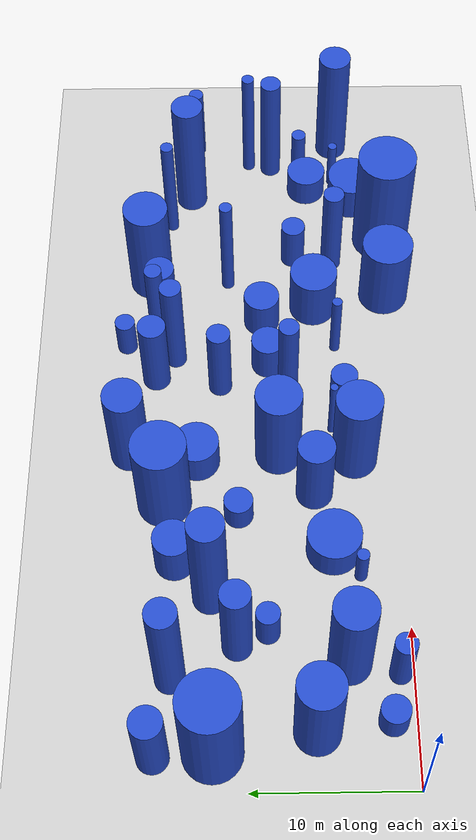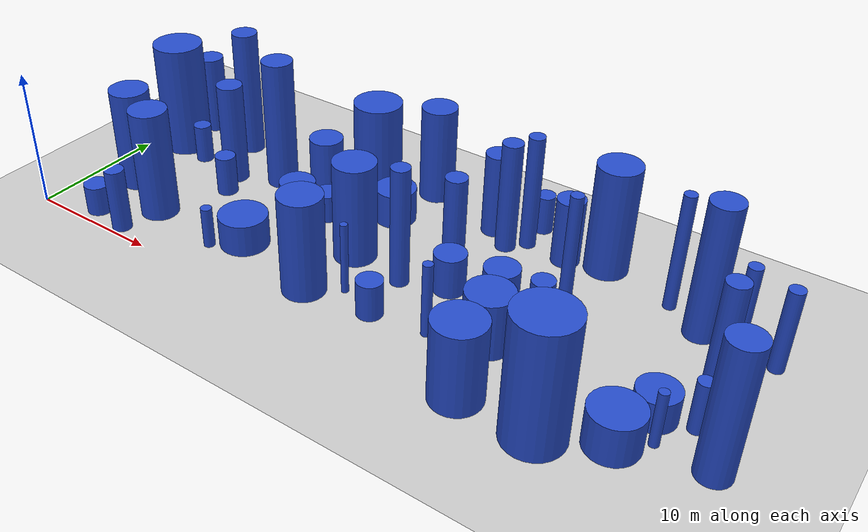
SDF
<sdf version="1.6">
 <world name="default">
  <model name="ground_plane">
   <static>1</static>
   <link name="link">
    <collision name="collision">
     <geometry><plane><normal>0 0 1</normal><size>100 100</size></plane></geometry>
     <surface><friction><ode><mu>100</mu><mu2>50</mu2></ode></friction></surface>
    </collision>
    <visual name="visual">
     <cast_shadows>0</cast_shadows>
     <geometry><plane><normal>0 0 1</normal><size>100 100</size></plane></geometry>
     <material>
      <script><uri>file://media/materials/scripts/gazebo.material</uri><name>Gazebo/Grey</name></script>
     </material>
    </visual>
   </link>
  </model>
  <model name="Cylinder 0">
   <static>1</static>
   <link name="link">
    <inertial>
     <mass>0.00859</mass>
     <inertia><ixx>0.00922</ixx><ixy>0</ixy><ixz>0</ixz><iyy>0.00922</iyy><iyz>0</iyz><izz>0.00922</izz></inertia>
    </inertial>
    <collision name="collision">
     <geometry><cylinder><length>2.52868</length><radius>1.47051</radius></cylinder></geometry>
     <surface><contact><collide_without_contact>1</collide_without_contact></contact></surface>
    </collision>
    <visual name="visual">
     <geometry><cylinder><length>2.52868</length><radius>1.47051</radius></cylinder></geometry>
     <material>
      <script><uri>file://media/materials/scripts/gazebo.material</uri><name>Gazebo/Blue</name></script>
     </material>
    </visual>
    <gravity>0</gravity>
   </link>
   <pose>21.84558 13.20677 1.26434 0 0 0</pose>
  </model>
  <model name="Cylinder 6">
   <static>1</static>
   <link name="link">
    <inertial>
     <mass>0.00950</mass>
     <inertia><ixx>0.03203</ixx><ixy>0</ixy><ixz>0</ixz><iyy>0.03203</iyy><iyz>0</iyz><izz>0.03203</izz></inertia>
    </inertial>
    <collision name="collision">
     <geometry><cylinder><length>6.12429</length><radius>0.99359</radius></cylinder></geometry>
     <surface><contact><collide_without_contact>1</collide_without_contact></contact></surface>
    </collision>
    <visual name="visual">
     <geometry><cylinder><length>6.12429</length><radius>0.99359</radius></cylinder></geometry>
     <material>
      <script><uri>file://media/materials/scripts/gazebo.material</uri><name>Gazebo/Blue</name></script>
     </material>
    </visual>
    <gravity>0</gravity>
   </link>
   <pose>2.14470 15.52811 3.06214 0 0 0</pose>
  </model>
  <model name="Cylinder 10">
   <static>1</static>
   <link name="link">
    <inertial>
     <mass>0.01603</mass>
     <inertia><ixx>0.03169</ixx><ixy>0</ixy><ixz>0</ixz><iyy>0.03169</iyy><iyz>0</iyz><izz>0.03169</izz></inertia>
    </inertial>
    <collision name="collision">
     <geometry><cylinder><length>4.01059</length><radius>1.59519</radius></cylinder></geometry>
     <surface><contact><collide_without_contact>1</collide_without_contact></contact></surface>
    </collision>
    <visual name="visual">
     <geometry><cylinder><length>4.01059</length><radius>1.59519</radius></cylinder></geometry>
     <material>
      <script><uri>file://media/materials/scripts/gazebo.material</uri><name>Gazebo/Blue</name></script>
     </material>
    </visual>
    <gravity>0</gravity>
   </link>
   <pose>34.21199 5.33464 2.00530 0 0 0</pose>
  </model>
  <model name="Cylinder 13">
   <static>1</static>
   <link name="link">
    <inertial>
     <mass>0.02797</mass>
     <inertia><ixx>0.16425</ixx><ixy>0</ixy><ixz>0</ixz><iyy>0.16425</iyy><iyz>0</iyz><izz>0.16425</izz></inertia>
    </inertial>
    <collision name="collision">
     <geometry><cylinder><length>7.98618</length><radius>1.49322</radius></cylinder></geometry>
     <surface><contact><collide_without_contact>1</collide_without_contact></contact></surface>
    </collision>
    <visual name="visual">
     <geometry><cylinder><length>7.98618</length><radius>1.49322</radius></cylinder></geometry>
     <material>
      <script><uri>file://media/materials/scripts/gazebo.material</uri><name>Gazebo/Blue</name></script>
     </material>
    </visual>
    <gravity>0</gravity>
   </link>
   <pose>36.56761 16.57723 3.99309 0 0 0</pose>
  </model>
  <model name="Cylinder 14">
   <static>1</static>
   <link name="link">
    <inertial>
     <mass>0.02478</mass>
     <inertia><ixx>0.13306</ixx><ixy>0</ixy><ixz>0</ixz><iyy>0.13306</iyy><iyz>0</iyz><izz>0.13306</izz></inertia>
    </inertial>
    <collision name="collision">
     <geometry><cylinder><length>7.63181</length><radius>1.43765</radius></cylinder></geometry>
     <surface><contact><collide_without_contact>1</collide_without_contact></contact></surface>
    </collision>
    <visual name="visual">
     <geometry><cylinder><length>7.63181</length><radius>1.43765</radius></cylinder></geometry>
     <material>
      <script><uri>file://media/materials/scripts/gazebo.material</uri><name>Gazebo/Blue</name></script>
     </material>
    </visual>
    <gravity>0</gravity>
   </link>
   <pose>3.54285 5.92787 3.81591 0 0 0</pose>
  </model>
  <model name="Cylinder 25">
   <static>1</static>
   <link name="link">
    <inertial>
     <mass>0.00869</mass>
     <inertia><ixx>0.01215</ixx><ixy>0</ixy><ixz>0</ixz><iyy>0.01215</iyy><iyz>0</iyz><izz>0.01215</izz></inertia>
    </inertial>
    <collision name="collision">
     <geometry><cylinder><length>3.46196</length><radius>1.26390</radius></cylinder></geometry>
     <surface><contact><collide_without_contact>1</collide_without_contact></contact></surface>
    </collision>
    <visual name="visual">
     <geometry><cylinder><length>3.46196</length><radius>1.26390</radius></cylinder></geometry>
     <material>
      <script><uri>file://media/materials/scripts/gazebo.material</uri><name>Gazebo/Blue</name></script>
     </material>
    </visual>
    <gravity>0</gravity>
   </link>
   <pose>14.58376 14.51484 1.73098 0 0 0</pose>
  </model>
  <model name="Cylinder 26">
   <static>1</static>
   <link name="link">
    <inertial>
     <mass>0.00419</mass>
     <inertia><ixx>0.02532</ixx><ixy>0</ixy><ixz>0</ixz><iyy>0.02532</iyy><iyz>0</iyz><izz>0.02532</izz></inertia>
    </inertial>
    <collision name="collision">
     <geometry><cylinder><length>8.45832</length><radius>0.56165</radius></cylinder></geometry>
     <surface><contact><collide_without_contact>1</collide_without_contact></contact></surface>
    </collision>
    <visual name="visual">
     <geometry><cylinder><length>8.45832</length><radius>0.56165</radius></cylinder></geometry>
     <material>
      <script><uri>file://media/materials/scripts/gazebo.material</uri><name>Gazebo/Blue</name></script>
     </material>
    </visual>
    <gravity>0</gravity>
   </link>
   <pose>31.03256 15.87372 4.22916 0 0 0</pose>
  </model>
  <model name="Cylinder 29">
   <static>1</static>
   <link name="link">
    <inertial>
     <mass>0.01311</mass>
     <inertia><ixx>0.04273</ixx><ixy>0</ixy><ixz>0</ixz><iyy>0.04273</iyy><iyz>0</iyz><izz>0.04273</izz></inertia>
    </inertial>
    <collision name="collision">
     <geometry><cylinder><length>5.90664</length><radius>1.18849</radius></cylinder></geometry>
     <surface><contact><collide_without_contact>1</collide_without_contact></contact></surface>
    </collision>
    <visual name="visual">
     <geometry><cylinder><length>5.90664</length><radius>1.18849</radius></cylinder></geometry>
     <material>
      <script><uri>file://media/materials/scripts/gazebo.material</uri><name>Gazebo/Blue</name></script>
     </material>
    </visual>
    <gravity>0</gravity>
   </link>
   <pose>19.39570 5.64225 2.95332 0 0 0</pose>
  </model>
  <model name="Cylinder 35">
   <static>1</static>
   <link name="link">
    <inertial>
     <mass>0.03540</mass>
     <inertia><ixx>0.18807</ixx><ixy>0</ixy><ixz>0</ixz><iyy>0.18807</iyy><iyz>0</iyz><izz>0.18807</izz></inertia>
    </inertial>
    <collision name="collision">
     <geometry><cylinder><length>7.38876</length><radius>1.74653</radius></cylinder></geometry>
     <surface><contact><collide_without_contact>1</collide_without_contact></contact></surface>
    </collision>
    <visual name="visual">
     <geometry><cylinder><length>7.38876</length><radius>1.74653</radius></cylinder></geometry>
     <material>
      <script><uri>file://media/materials/scripts/gazebo.material</uri><name>Gazebo/Blue</name></script>
     </material>
    </visual>
    <gravity>0</gravity>
   </link>
   <pose>18.78845 15.25643 3.69438 0 0 0</pose>
  </model>
  <model name="Cylinder 36">
   <static>1</static>
   <link name="link">
    <inertial>
     <mass>0.00096</mass>
     <inertia><ixx>0.00226</ixx><ixy>0</ixy><ixz>0</ixz><iyy>0.00226</iyy><iyz>0</iyz><izz>0.00226</izz></inertia>
    </inertial>
    <collision name="collision">
     <geometry><cylinder><length>5.29544</length><radius>0.33900</radius></cylinder></geometry>
     <surface><contact><collide_without_contact>1</collide_without_contact></contact></surface>
    </collision>
    <visual name="visual">
     <geometry><cylinder><length>5.29544</length><radius>0.33900</radius></cylinder></geometry>
     <material>
      <script><uri>file://media/materials/scripts/gazebo.material</uri><name>Gazebo/Blue</name></script>
     </material>
    </visual>
    <gravity>0</gravity>
   </link>
   <pose>30.75622 3.91366 2.64772 0 0 0</pose>
  </model>
  <model name="Cylinder 40">
   <static>1</static>
   <link name="link">
    <inertial>
     <mass>0.00282</mass>
     <inertia><ixx>0.00160</ixx><ixy>0</ixy><ixz>0</ixz><iyy>0.00160</iyy><iyz>0</iyz><izz>0.00160</izz></inertia>
    </inertial>
    <collision name="collision">
     <geometry><cylinder><length>2.04846</length><radius>0.93604</radius></cylinder></geometry>
     <surface><contact><collide_without_contact>1</collide_without_contact></contact></surface>
    </collision>
    <visual name="visual">
     <geometry><cylinder><length>2.04846</length><radius>0.93604</radius></cylinder></geometry>
     <material>
      <script><uri>file://media/materials/scripts/gazebo.material</uri><name>Gazebo/Blue</name></script>
     </material>
    </visual>
    <gravity>0</gravity>
   </link>
   <pose>17.85015 10.50843 1.02423 0 0 0</pose>
  </model>
  <model name="Cylinder 41">
   <static>1</static>
   <link name="link">
    <inertial>
     <mass>0.01875</mass>
     <inertia><ixx>0.08849</ixx><ixy>0</ixy><ixz>0</ixz><iyy>0.08849</iyy><iyz>0</iyz><izz>0.08849</izz></inertia>
    </inertial>
    <collision name="collision">
     <geometry><cylinder><length>7.18613</length><radius>1.28896</radius></cylinder></geometry>
     <surface><contact><collide_without_contact>1</collide_without_contact></contact></surface>
    </collision>
    <visual name="visual">
     <geometry><cylinder><length>7.18613</length><radius>1.28896</radius></cylinder></geometry>
     <material>
      <script><uri>file://media/materials/scripts/gazebo.material</uri><name>Gazebo/Blue</name></script>
     </material>
    </visual>
    <gravity>0</gravity>
   </link>
   <pose>22.45891 17.58075 3.59307 0 0 0</pose>
  </model>
  <model name="Cylinder 43">
   <static>1</static>
   <link name="link">
    <inertial>
     <mass>0.00548</mass>
     <inertia><ixx>0.00542</ixx><ixy>0</ixy><ixz>0</ixz><iyy>0.00542</iyy><iyz>0</iyz><izz>0.00542</izz></inertia>
    </inertial>
    <collision name="collision">
     <geometry><cylinder><length>2.86765</length><radius>1.10262</radius></cylinder></geometry>
     <surface><contact><collide_without_contact>1</collide_without_contact></contact></surface>
    </collision>
    <visual name="visual">
     <geometry><cylinder><length>2.86765</length><radius>1.10262</radius></cylinder></geometry>
     <material>
      <script><uri>file://media/materials/scripts/gazebo.material</uri><name>Gazebo/Blue</name></script>
     </material>
    </visual>
    <gravity>0</gravity>
   </link>
   <pose>29.43216 8.50548 1.43382 0 0 0</pose>
  </model>
  <model name="Cylinder 44">
   <static>1</static>
   <link name="link">
    <inertial>
     <mass>0.02401</mass>
     <inertia><ixx>0.14614</ixx><ixy>0</ixy><ixz>0</ixz><iyy>0.14614</iyy><iyz>0</iyz><izz>0.14614</izz></inertia>
    </inertial>
    <collision name="collision">
     <geometry><cylinder><length>8.21422</length><radius>1.36398</radius></cylinder></geometry>
     <surface><contact><collide_without_contact>1</collide_without_contact></contact></surface>
    </collision>
    <visual name="visual">
     <geometry><cylinder><length>8.21422</length><radius>1.36398</radius></cylinder></geometry>
     <material>
      <script><uri>file://media/materials/scripts/gazebo.material</uri><name>Gazebo/Blue</name></script>
     </material>
    </visual>
    <gravity>0</gravity>
   </link>
   <pose>7.74931 3.88722 4.10711 0 0 0</pose>
  </model>
  <model name="Cylinder 50">
   <static>1</static>
   <link name="link">
    <inertial>
     <mass>0.00285</mass>
     <inertia><ixx>0.00173</ixx><ixy>0</ixy><ixz>0</ixz><iyy>0.00173</iyy><iyz>0</iyz><izz>0.00173</izz></inertia>
    </inertial>
    <collision name="collision">
     <geometry><cylinder><length>2.19328</length><radius>0.90892</radius></cylinder></geometry>
     <surface><contact><collide_without_contact>1</collide_without_contact></contact></surface>
    </collision>
    <visual name="visual">
     <geometry><cylinder><length>2.19328</length><radius>0.90892</radius></cylinder></geometry>
     <material>
      <script><uri>file://media/materials/scripts/gazebo.material</uri><name>Gazebo/Blue</name></script>
     </material>
    </visual>
    <gravity>0</gravity>
   </link>
   <pose>4.13088 1.44789 1.09664 0 0 0</pose>
  </model>
  <model name="Cylinder 51">
   <static>1</static>
   <link name="link">
    <inertial>
     <mass>0.00074</mass>
     <inertia><ixx>0.00058</ixx><ixy>0</ixy><ixz>0</ixz><iyy>0.00058</iyy><iyz>0</iyz><izz>0.00058</izz></inertia>
    </inertial>
    <collision name="collision">
     <geometry><cylinder><length>2.99114</length><radius>0.39693</radius></cylinder></geometry>
     <surface><contact><collide_without_contact>1</collide_without_contact></contact></surface>
    </collision>
    <visual name="visual">
     <geometry><cylinder><length>2.99114</length><radius>0.39693</radius></cylinder></geometry>
     <material>
      <script><uri>file://media/materials/scripts/gazebo.material</uri><name>Gazebo/Blue</name></script>
     </material>
    </visual>
    <gravity>0</gravity>
   </link>
   <pose>13.54326 2.91767 1.49557 0 0 0</pose>
  </model>
  <model name="Cylinder 53">
   <static>1</static>
   <link name="link">
    <inertial>
     <mass>0.04631</mass>
     <inertia><ixx>0.32648</ixx><ixy>0</ixy><ixz>0</ixz><iyy>0.32648</iyy><iyz>0</iyz><izz>0.32648</izz></inertia>
    </inertial>
    <collision name="collision">
     <geometry><cylinder><length>8.62246</length><radius>1.84905</radius></cylinder></geometry>
     <surface><contact><collide_without_contact>1</collide_without_contact></contact></surface>
    </collision>
    <visual name="visual">
     <geometry><cylinder><length>8.62246</length><radius>1.84905</radius></cylinder></geometry>
     <material>
      <script><uri>file://media/materials/scripts/gazebo.material</uri><name>Gazebo/Blue</name></script>
     </material>
    </visual>
    <gravity>0</gravity>
   </link>
   <pose>2.38717 12.05559 4.31123 0 0 0</pose>
  </model>
  <model name="Cylinder 56">
   <static>1</static>
   <link name="link">
    <inertial>
     <mass>0.01410</mass>
     <inertia><ixx>0.11528</ixx><ixy>0</ixy><ixz>0</ixz><iyy>0.11528</iyy><iyz>0</iyz><izz>0.11528</izz></inertia>
    </inertial>
    <collision name="collision">
     <geometry><cylinder><length>9.76389</length><radius>0.95891</radius></cylinder></geometry>
     <surface><contact><collide_without_contact>1</collide_without_contact></contact></surface>
    </collision>
    <visual name="visual">
     <geometry><cylinder><length>9.76389</length><radius>0.95891</radius></cylinder></geometry>
     <material>
      <script><uri>file://media/materials/scripts/gazebo.material</uri><name>Gazebo/Blue</name></script>
     </material>
    </visual>
    <gravity>0</gravity>
   </link>
   <pose>6.91581 14.62307 4.88194 0 0 0</pose>
  </model>
  <model name="Cylinder 57">
   <static>1</static>
   <link name="link">
    <inertial>
     <mass>0.00243</mass>
     <inertia><ixx>0.01442</ixx><ixy>0</ixy><ixz>0</ixz><iyy>0.01442</iyy><iyz>0</iyz><izz>0.01442</izz></inertia>
    </inertial>
    <collision name="collision">
     <geometry><cylinder><length>8.40246</length><radius>0.42927</radius></cylinder></geometry>
     <surface><contact><collide_without_contact>1</collide_without_contact></contact></surface>
    </collision>
    <visual name="visual">
     <geometry><cylinder><length>8.40246</length><radius>0.42927</radius></cylinder></geometry>
     <material>
      <script><uri>file://media/materials/scripts/gazebo.material</uri><name>Gazebo/Blue</name></script>
     </material>
    </visual>
    <gravity>0</gravity>
   </link>
   <pose>41.60891 15.24955 4.20123 0 0 0</pose>
  </model>
  <model name="Cylinder 64">
   <static>1</static>
   <link name="link">
    <inertial>
     <mass>0.00237</mass>
     <inertia><ixx>0.00693</ixx><ixy>0</ixy><ixz>0</ixz><iyy>0.00693</iyy><iyz>0</iyz><izz>0.00693</izz></inertia>
    </inertial>
    <collision name="collision">
     <geometry><cylinder><length>5.85245</length><radius>0.50806</radius></cylinder></geometry>
     <surface><contact><collide_without_contact>1</collide_without_contact></contact></surface>
    </collision>
    <visual name="visual">
     <geometry><cylinder><length>5.85245</length><radius>0.50806</radius></cylinder></geometry>
     <material>
      <script><uri>file://media/materials/scripts/gazebo.material</uri><name>Gazebo/Blue</name></script>
     </material>
    </visual>
    <gravity>0</gravity>
   </link>
   <pose>48.98551 13.45441 2.92622 0 0 0</pose>
  </model>
  <model name="Cylinder 67">
   <static>1</static>
   <link name="link">
    <inertial>
     <mass>0.00745</mass>
     <inertia><ixx>0.01662</ixx><ixy>0</ixy><ixz>0</ixz><iyy>0.01662</iyy><iyz>0</iyz><izz>0.01662</izz></inertia>
    </inertial>
    <collision name="collision">
     <geometry><cylinder><length>4.88348</length><radius>0.98555</radius></cylinder></geometry>
     <surface><contact><collide_without_contact>1</collide_without_contact></contact></surface>
    </collision>
    <visual name="visual">
     <geometry><cylinder><length>4.88348</length><radius>0.98555</radius></cylinder></geometry>
     <material>
      <script><uri>file://media/materials/scripts/gazebo.material</uri><name>Gazebo/Blue</name></script>
     </material>
    </visual>
    <gravity>0</gravity>
   </link>
   <pose>33.97305 15.75198 2.44174 0 0 0</pose>
  </model>
  <model name="Cylinder 70">
   <static>1</static>
   <link name="link">
    <inertial>
     <mass>0.05315</mass>
     <inertia><ixx>0.38630</ixx><ixy>0</ixy><ixz>0</ixz><iyy>0.38630</iyy><iyz>0</iyz><izz>0.38630</izz></inertia>
    </inertial>
    <collision name="collision">
     <geometry><cylinder><length>8.69149</length><radius>1.97304</radius></cylinder></geometry>
     <surface><contact><collide_without_contact>1</collide_without_contact></contact></surface>
    </collision>
    <visual name="visual">
     <geometry><cylinder><length>8.69149</length><radius>1.97304</radius></cylinder></geometry>
     <material>
      <script><uri>file://media/materials/scripts/gazebo.material</uri><name>Gazebo/Blue</name></script>
     </material>
    </visual>
    <gravity>0</gravity>
   </link>
   <pose>40.21470 0.28979 4.34574 0 0 0</pose>
  </model>
  <model name="Cylinder 74">
   <static>1</static>
   <link name="link">
    <inertial>
     <mass>0.00370</mass>
     <inertia><ixx>0.00452</ixx><ixy>0</ixy><ixz>0</ixz><iyy>0.00452</iyy><iyz>0</iyz><izz>0.00452</izz></inertia>
    </inertial>
    <collision name="collision">
     <geometry><cylinder><length>3.55855</length><radius>0.81366</radius></cylinder></geometry>
     <surface><contact><collide_without_contact>1</collide_without_contact></contact></surface>
    </collision>
    <visual name="visual">
     <geometry><cylinder><length>3.55855</length><radius>0.81366</radius></cylinder></geometry>
     <material>
      <script><uri>file://media/materials/scripts/gazebo.material</uri><name>Gazebo/Blue</name></script>
     </material>
    </visual>
    <gravity>0</gravity>
   </link>
   <pose>38.56090 6.62677 1.77927 0 0 0</pose>
  </model>
  <model name="Cylinder 75">
   <static>1</static>
   <link name="link">
    <inertial>
     <mass>0.00578</mass>
     <inertia><ixx>0.01941</ixx><ixy>0</ixy><ixz>0</ixz><iyy>0.01941</iyy><iyz>0</iyz><izz>0.01941</izz></inertia>
    </inertial>
    <collision name="collision">
     <geometry><cylinder><length>6.20812</length><radius>0.76977</radius></cylinder></geometry>
     <surface><contact><collide_without_contact>1</collide_without_contact></contact></surface>
    </collision>
    <visual name="visual">
     <geometry><cylinder><length>6.20812</length><radius>0.76977</radius></cylinder></geometry>
     <material>
      <script><uri>file://media/materials/scripts/gazebo.material</uri><name>Gazebo/Blue</name></script>
     </material>
    </visual>
    <gravity>0</gravity>
   </link>
   <pose>27.66321 11.72273 3.10406 0 0 0</pose>
  </model>
  <model name="Cylinder 83">
   <static>1</static>
   <link name="link">
    <inertial>
     <mass>0.00829</mass>
     <inertia><ixx>0.02826</ixx><ixy>0</ixy><ixz>0</ixz><iyy>0.02826</iyy><iyz>0</iyz><izz>0.02826</izz></inertia>
    </inertial>
    <collision name="collision">
     <geometry><cylinder><length>6.19191</length><radius>0.92339</radius></cylinder></geometry>
     <surface><contact><collide_without_contact>1</collide_without_contact></contact></surface>
    </collision>
    <visual name="visual">
     <geometry><cylinder><length>6.19191</length><radius>0.92339</radius></cylinder></geometry>
     <material>
      <script><uri>file://media/materials/scripts/gazebo.material</uri><name>Gazebo/Blue</name></script>
     </material>
    </visual>
    <gravity>0</gravity>
   </link>
   <pose>28.29855 16.02337 3.09596 0 0 0</pose>
  </model>
  <model name="Cylinder 84">
   <static>1</static>
   <link name="link">
    <inertial>
     <mass>0.00362</mass>
     <inertia><ixx>0.00713</ixx><ixy>0</ixy><ixz>0</ixz><iyy>0.00713</iyy><iyz>0</iyz><izz>0.00713</izz></inertia>
    </inertial>
    <collision name="collision">
     <geometry><cylinder><length>4.70653</length><radius>0.70010</radius></cylinder></geometry>
     <surface><contact><collide_without_contact>1</collide_without_contact></contact></surface>
    </collision>
    <visual name="visual">
     <geometry><cylinder><length>4.70653</length><radius>0.70010</radius></cylinder></geometry>
     <material>
      <script><uri>file://media/materials/scripts/gazebo.material</uri><name>Gazebo/Blue</name></script>
     </material>
    </visual>
    <gravity>0</gravity>
   </link>
   <pose>7.09654 0.85164 2.35326 0 0 0</pose>
  </model>
  <model name="Cylinder 85">
   <static>1</static>
   <link name="link">
    <inertial>
     <mass>0.01216</mass>
     <inertia><ixx>0.01612</ixx><ixy>0</ixy><ixz>0</ixz><iyy>0.01612</iyy><iyz>0</iyz><izz>0.01612</izz></inertia>
    </inertial>
    <collision name="collision">
     <geometry><cylinder><length>2.70342</length><radius>1.69253</radius></cylinder></geometry>
     <surface><contact><collide_without_contact>1</collide_without_contact></contact></surface>
    </collision>
    <visual name="visual">
     <geometry><cylinder><length>2.70342</length><radius>1.69253</radius></cylinder></geometry>
     <material>
      <script><uri>file://media/materials/scripts/gazebo.material</uri><name>Gazebo/Blue</name></script>
     </material>
    </visual>
    <gravity>0</gravity>
   </link>
   <pose>43.91452 2.25195 1.35171 0 0 0</pose>
  </model>
  <model name="Cylinder 86">
   <static>1</static>
   <link name="link">
    <inertial>
     <mass>0.02549</mass>
     <inertia><ixx>0.12559</ixx><ixy>0</ixy><ixz>0</ixz><iyy>0.12559</iyy><iyz>0</iyz><izz>0.12559</izz></inertia>
    </inertial>
    <collision name="collision">
     <geometry><cylinder><length>7.23835</length><radius>1.49735</radius></cylinder></geometry>
     <surface><contact><collide_without_contact>1</collide_without_contact></contact></surface>
    </collision>
    <visual name="visual">
     <geometry><cylinder><length>7.23835</length><radius>1.49735</radius></cylinder></geometry>
     <material>
      <script><uri>file://media/materials/scripts/gazebo.material</uri><name>Gazebo/Blue</name></script>
     </material>
    </visual>
    <gravity>0</gravity>
   </link>
   <pose>21.90961 2.96513 3.61917 0 0 0</pose>
  </model>
  <model name="Cylinder 87">
   <static>1</static>
   <link name="link">
    <inertial>
     <mass>0.01075</mass>
     <inertia><ixx>0.05514</ixx><ixy>0</ixy><ixz>0</ixz><iyy>0.05514</iyy><iyz>0</iyz><izz>0.05514</izz></inertia>
    </inertial>
    <collision name="collision">
     <geometry><cylinder><length>7.67533</length><radius>0.94406</radius></cylinder></geometry>
     <surface><contact><collide_without_contact>1</collide_without_contact></contact></surface>
    </collision>
    <visual name="visual">
     <geometry><cylinder><length>7.67533</length><radius>0.94406</radius></cylinder></geometry>
     <material>
      <script><uri>file://media/materials/scripts/gazebo.material</uri><name>Gazebo/Blue</name></script>
     </material>
    </visual>
    <gravity>0</gravity>
   </link>
   <pose>8.92378 10.62045 3.83766 0 0 0</pose>
  </model>
  <model name="Cylinder 90">
   <static>1</static>
   <link name="link">
    <inertial>
     <mass>0.00059</mass>
     <inertia><ixx>0.00073</ixx><ixy>0</ixy><ixz>0</ixz><iyy>0.00073</iyy><iyz>0</iyz><izz>0.00073</izz></inertia>
    </inertial>
    <collision name="collision">
     <geometry><cylinder><length>3.84002</length><radius>0.31147</radius></cylinder></geometry>
     <surface><contact><collide_without_contact>1</collide_without_contact></contact></surface>
    </collision>
    <visual name="visual">
     <geometry><cylinder><length>3.84002</length><radius>0.31147</radius></cylinder></geometry>
     <material>
      <script><uri>file://media/materials/scripts/gazebo.material</uri><name>Gazebo/Blue</name></script>
     </material>
    </visual>
    <gravity>0</gravity>
   </link>
   <pose>45.72780 3.62505 1.92001 0 0 0</pose>
  </model>
  <model name="Cylinder 99">
   <static>1</static>
   <link name="link">
    <inertial>
     <mass>0.01770</mass>
     <inertia><ixx>0.13219</ixx><ixy>0</ixy><ixz>0</ixz><iyy>0.13219</iyy><iyz>0</iyz><izz>0.13219</izz></inertia>
    </inertial>
    <collision name="collision">
     <geometry><cylinder><length>9.27243</length><radius>1.10235</radius></cylinder></geometry>
     <surface><contact><collide_without_contact>1</collide_without_contact></contact></surface>
    </collision>
    <visual name="visual">
     <geometry><cylinder><length>9.27243</length><radius>1.10235</radius></cylinder></geometry>
     <material>
      <script><uri>file://media/materials/scripts/gazebo.material</uri><name>Gazebo/Blue</name></script>
     </material>
    </visual>
    <gravity>0</gravity>
   </link>
   <pose>49.07772 3.52621 4.63621 0 0 0</pose>
  </model>
  <model name="Cylinder 100">
   <static>1</static>
   <link name="link">
    <inertial>
     <mass>0.00605</mass>
     <inertia><ixx>0.00502</ixx><ixy>0</ixy><ixz>0</ixz><iyy>0.00502</iyy><iyz>0</iyz><izz>0.00502</izz></inertia>
    </inertial>
    <collision name="collision">
     <geometry><cylinder><length>2.13017</length><radius>1.34486</radius></cylinder></geometry>
     <surface><contact><collide_without_contact>1</collide_without_contact></contact></surface>
    </collision>
    <visual name="visual">
     <geometry><cylinder><length>2.13017</length><radius>1.34486</radius></cylinder></geometry>
     <material>
      <script><uri>file://media/materials/scripts/gazebo.material</uri><name>Gazebo/Blue</name></script>
     </material>
    </visual>
    <gravity>0</gravity>
   </link>
   <pose>44.90200 5.52597 1.06509 0 0 0</pose>
  </model>
  <model name="Cylinder 106">
   <static>1</static>
   <link name="link">
    <inertial>
     <mass>0.01110</mass>
     <inertia><ixx>0.01344</ixx><ixy>0</ixy><ixz>0</ixz><iyy>0.01344</iyy><iyz>0</iyz><izz>0.01344</izz></inertia>
    </inertial>
    <collision name="collision">
     <geometry><cylinder><length>2.34181</length><radius>1.73688</radius></cylinder></geometry>
     <surface><contact><collide_without_contact>1</collide_without_contact></contact></surface>
    </collision>
    <visual name="visual">
     <geometry><cylinder><length>2.34181</length><radius>1.73688</radius></cylinder></geometry>
     <material>
      <script><uri>file://media/materials/scripts/gazebo.material</uri><name>Gazebo/Blue</name></script>
     </material>
    </visual>
    <gravity>0</gravity>
   </link>
   <pose>15.30655 4.55763 1.17091 0 0 0</pose>
  </model>
  <model name="Cylinder 113">
   <static>1</static>
   <link name="link">
    <inertial>
     <mass>0.00200</mass>
     <inertia><ixx>0.00158</ixx><ixy>0</ixy><ixz>0</ixz><iyy>0.00158</iyy><iyz>0</iyz><izz>0.00158</izz></inertia>
    </inertial>
    <collision name="collision">
     <geometry><cylinder><length>2.85259</length><radius>0.66885</radius></cylinder></geometry>
     <surface><contact><collide_without_contact>1</collide_without_contact></contact></surface>
    </collision>
    <visual name="visual">
     <geometry><cylinder><length>2.85259</length><radius>0.66885</radius></cylinder></geometry>
     <material>
      <script><uri>file://media/materials/scripts/gazebo.material</uri><name>Gazebo/Blue</name></script>
     </material>
    </visual>
    <gravity>0</gravity>
   </link>
   <pose>31.01441 18.10999 1.42630 0 0 0</pose>
  </model>
  <model name="Cylinder 118">
   <static>1</static>
   <link name="link">
    <inertial>
     <mass>0.00649</mass>
     <inertia><ixx>0.03645</ixx><ixy>0</ixy><ixz>0</ixz><iyy>0.03645</iyy><iyz>0</iyz><izz>0.03645</izz></inertia>
    </inertial>
    <collision name="collision">
     <geometry><cylinder><length>8.11823</length><radius>0.71324</radius></cylinder></geometry>
     <surface><contact><collide_without_contact>1</collide_without_contact></contact></surface>
    </collision>
    <visual name="visual">
     <geometry><cylinder><length>8.11823</length><radius>0.71324</radius></cylinder></geometry>
     <material>
      <script><uri>file://media/materials/scripts/gazebo.material</uri><name>Gazebo/Blue</name></script>
     </material>
    </visual>
    <gravity>0</gravity>
   </link>
   <pose>29.92891 14.75683 4.05911 0 0 0</pose>
  </model>
  <model name="Cylinder 124">
   <static>1</static>
   <link name="link">
    <inertial>
     <mass>0.00196</mass>
     <inertia><ixx>0.00162</ixx><ixy>0</ixy><ixz>0</ixz><iyy>0.00162</iyy><iyz>0</iyz><izz>0.00162</izz></inertia>
    </inertial>
    <collision name="collision">
     <geometry><cylinder><length>2.94129</length><radius>0.65090</radius></cylinder></geometry>
     <surface><contact><collide_without_contact>1</collide_without_contact></contact></surface>
    </collision>
    <visual name="visual">
     <geometry><cylinder><length>2.94129</length><radius>0.65090</radius></cylinder></geometry>
     <material>
      <script><uri>file://media/materials/scripts/gazebo.material</uri><name>Gazebo/Blue</name></script>
     </material>
    </visual>
    <gravity>0</gravity>
   </link>
   <pose>5.12487 11.17583 1.47064 0 0 0</pose>
  </model>
  <model name="Cylinder 126">
   <static>1</static>
   <link name="link">
    <inertial>
     <mass>0.00579</mass>
     <inertia><ixx>0.03703</ixx><ixy>0</ixy><ixz>0</ixz><iyy>0.03703</iyy><iyz>0</iyz><izz>0.03703</izz></inertia>
    </inertial>
    <collision name="collision">
     <geometry><cylinder><length>8.68911</length><radius>0.65124</radius></cylinder></geometry>
     <surface><contact><collide_without_contact>1</collide_without_contact></contact></surface>
    </collision>
    <visual name="visual">
     <geometry><cylinder><length>8.68911</length><radius>0.65124</radius></cylinder></geometry>
     <material>
      <script><uri>file://media/materials/scripts/gazebo.material</uri><name>Gazebo/Blue</name></script>
     </material>
    </visual>
    <gravity>0</gravity>
   </link>
   <pose>26.40573 7.22727 4.34455 0 0 0</pose>
  </model>
  <model name="Cylinder 127">
   <static>1</static>
   <link name="link">
    <inertial>
     <mass>0.00253</mass>
     <inertia><ixx>0.01718</ixx><ixy>0</ixy><ixz>0</ixz><iyy>0.01718</iyy><iyz>0</iyz><izz>0.01718</izz></inertia>
    </inertial>
    <collision name="collision">
     <geometry><cylinder><length>8.98985</length><radius>0.42361</radius></cylinder></geometry>
     <surface><contact><collide_without_contact>1</collide_without_contact></contact></surface>
    </collision>
    <visual name="visual">
     <geometry><cylinder><length>8.98985</length><radius>0.42361</radius></cylinder></geometry>
     <material>
      <script><uri>file://media/materials/scripts/gazebo.material</uri><name>Gazebo/Blue</name></script>
     </material>
    </visual>
    <gravity>0</gravity>
   </link>
   <pose>47.34318 9.68637 4.49492 0 0 0</pose>
  </model>
  <model name="Cylinder 130">
   <static>1</static>
   <link name="link">
    <inertial>
     <mass>0.02602</mass>
     <inertia><ixx>0.08922</ixx><ixy>0</ixy><ixz>0</ixz><iyy>0.08922</iyy><iyz>0</iyz><izz>0.08922</izz></inertia>
    </inertial>
    <collision name="collision">
     <geometry><cylinder><length>5.69363</length><radius>1.70573</radius></cylinder></geometry>
     <surface><contact><collide_without_contact>1</collide_without_contact></contact></surface>
    </collision>
    <visual name="visual">
     <geometry><cylinder><length>5.69363</length><radius>1.70573</radius></cylinder></geometry>
     <material>
      <script><uri>file://media/materials/scripts/gazebo.material</uri><name>Gazebo/Blue</name></script>
     </material>
    </visual>
    <gravity>0</gravity>
   </link>
   <pose>35.21474 0.34706 2.84682 0 0 0</pose>
  </model>
  <model name="Cylinder 131">
   <static>1</static>
   <link name="link">
    <inertial>
     <mass>0.00053</mass>
     <inertia><ixx>0.00119</ixx><ixy>0</ixy><ixz>0</ixz><iyy>0.00119</iyy><iyz>0</iyz><izz>0.00119</izz></inertia>
    </inertial>
    <collision name="collision">
     <geometry><cylinder><length>5.18052</length><radius>0.25528</radius></cylinder></geometry>
     <surface><contact><collide_without_contact>1</collide_without_contact></contact></surface>
    </collision>
    <visual name="visual">
     <geometry><cylinder><length>5.18052</length><radius>0.25528</radius></cylinder></geometry>
     <material>
      <script><uri>file://media/materials/scripts/gazebo.material</uri><name>Gazebo/Blue</name></script>
     </material>
    </visual>
    <gravity>0</gravity>
   </link>
   <pose>24.17344 4.35431 2.59026 0 0 0</pose>
  </model>
  <model name="Cylinder 132">
   <static>1</static>
   <link name="link">
    <inertial>
     <mass>0.00572</mass>
     <inertia><ixx>0.02702</ixx><ixy>0</ixy><ixz>0</ixz><iyy>0.02702</iyy><iyz>0</iyz><izz>0.02702</izz></inertia>
    </inertial>
    <collision name="collision">
     <geometry><cylinder><length>7.43346</length><radius>0.69971</radius></cylinder></geometry>
     <surface><contact><collide_without_contact>1</collide_without_contact></contact></surface>
    </collision>
    <visual name="visual">
     <geometry><cylinder><length>7.43346</length><radius>0.69971</radius></cylinder></geometry>
     <material>
      <script><uri>file://media/materials/scripts/gazebo.material</uri><name>Gazebo/Blue</name></script>
     </material>
    </visual>
    <gravity>0</gravity>
   </link>
   <pose>38.13353 3.94266 3.71673 0 0 0</pose>
  </model>
  <model name="Cylinder 133">
   <static>1</static>
   <link name="link">
    <inertial>
     <mass>0.00139</mass>
     <inertia><ixx>0.00155</ixx><ixy>0</ixy><ixz>0</ixz><iyy>0.00155</iyy><iyz>0</iyz><izz>0.00155</izz></inertia>
    </inertial>
    <collision name="collision">
     <geometry><cylinder><length>3.54491</length><radius>0.50048</radius></cylinder></geometry>
     <surface><contact><collide_without_contact>1</collide_without_contact></contact></surface>
    </collision>
    <visual name="visual">
     <geometry><cylinder><length>3.54491</length><radius>0.50048</radius></cylinder></geometry>
     <material>
      <script><uri>file://media/materials/scripts/gazebo.material</uri><name>Gazebo/Blue</name></script>
     </material>
    </visual>
    <gravity>0</gravity>
   </link>
   <pose>47.11231 6.03095 1.77246 0 0 0</pose>
  </model>
  <model name="Cylinder 134">
   <static>1</static>
   <link name="link">
    <inertial>
     <mass>0.00270</mass>
     <inertia><ixx>0.00242</ixx><ixy>0</ixy><ixz>0</ixz><iyy>0.00242</iyy><iyz>0</iyz><izz>0.00242</izz></inertia>
    </inertial>
    <collision name="collision">
     <geometry><cylinder><length>3.00628</length><radius>0.75595</radius></cylinder></geometry>
     <surface><contact><collide_without_contact>1</collide_without_contact></contact></surface>
    </collision>
    <visual name="visual">
     <geometry><cylinder><length>3.00628</length><radius>0.75595</radius></cylinder></geometry>
     <material>
      <script><uri>file://media/materials/scripts/gazebo.material</uri><name>Gazebo/Blue</name></script>
     </material>
    </visual>
    <gravity>0</gravity>
   </link>
   <pose>9.79667 8.74844 1.50314 0 0 0</pose>
  </model>
  <model name="Cylinder 138">
   <static>1</static>
   <link name="link">
    <inertial>
     <mass>0.00685</mass>
     <inertia><ixx>0.00774</ixx><ixy>0</ixy><ixz>0</ixz><iyy>0.00774</iyy><iyz>0</iyz><izz>0.00774</izz></inertia>
    </inertial>
    <collision name="collision">
     <geometry><cylinder><length>3.04105</length><radius>1.19766</radius></cylinder></geometry>
     <surface><contact><collide_without_contact>1</collide_without_contact></contact></surface>
    </collision>
    <visual name="visual">
     <geometry><cylinder><length>3.04105</length><radius>1.19766</radius></cylinder></geometry>
     <material>
      <script><uri>file://media/materials/scripts/gazebo.material</uri><name>Gazebo/Blue</name></script>
     </material>
    </visual>
    <gravity>0</gravity>
   </link>
   <pose>32.97608 8.89382 1.52052 0 0 0</pose>
  </model>
  <model name="Cylinder 139">
   <static>1</static>
   <link name="link">
    <inertial>
     <mass>0.00702</mass>
     <inertia><ixx>0.04662</ixx><ixy>0</ixy><ixz>0</ixz><iyy>0.04662</iyy><iyz>0</iyz><izz>0.04662</izz></inertia>
    </inertial>
    <collision name="collision">
     <geometry><cylinder><length>8.84079</length><radius>0.71108</radius></cylinder></geometry>
     <surface><contact><collide_without_contact>1</collide_without_contact></contact></surface>
    </collision>
    <visual name="visual">
     <geometry><cylinder><length>8.84079</length><radius>0.71108</radius></cylinder></geometry>
     <material>
      <script><uri>file://media/materials/scripts/gazebo.material</uri><name>Gazebo/Blue</name></script>
     </material>
    </visual>
    <gravity>0</gravity>
   </link>
   <pose>47.04635 8.09389 4.42039 0 0 0</pose>
  </model>
  <model name="Cylinder 141">
   <static>1</static>
   <link name="link">
    <inertial>
     <mass>0.00330</mass>
     <inertia><ixx>0.00253</ixx><ixy>0</ixy><ixz>0</ixz><iyy>0.00253</iyy><iyz>0</iyz><izz>0.00253</izz></inertia>
    </inertial>
    <collision name="collision">
     <geometry><cylinder><length>2.59846</length><radius>0.89977</radius></cylinder></geometry>
     <surface><contact><collide_without_contact>1</collide_without_contact></contact></surface>
    </collision>
    <visual name="visual">
     <geometry><cylinder><length>2.59846</length><radius>0.89977</radius></cylinder></geometry>
     <material>
      <script><uri>file://media/materials/scripts/gazebo.material</uri><name>Gazebo/Blue</name></script>
     </material>
    </visual>
    <gravity>0</gravity>
   </link>
   <pose>26.79065 3.48891 1.29923 0 0 0</pose>
  </model>
  <model name="Cylinder 145">
   <static>1</static>
   <link name="link">
    <inertial>
     <mass>0.02587</mass>
     <inertia><ixx>0.12997</ixx><ixy>0</ixy><ixz>0</ixz><iyy>0.12997</iyy><iyz>0</iyz><izz>0.12997</izz></inertia>
    </inertial>
    <collision name="collision">
     <geometry><cylinder><length>7.31622</length><radius>1.50042</radius></cylinder></geometry>
     <surface><contact><collide_without_contact>1</collide_without_contact></contact></surface>
    </collision>
    <visual name="visual">
     <geometry><cylinder><length>7.31622</length><radius>1.50042</radius></cylinder></geometry>
     <material>
      <script><uri>file://media/materials/scripts/gazebo.material</uri><name>Gazebo/Blue</name></script>
     </material>
    </visual>
    <gravity>0</gravity>
   </link>
   <pose>22.28776 7.92470 3.65811 0 0 0</pose>
  </model>
  <model name="Cylinder 146">
   <static>1</static>
   <link name="link">
    <inertial>
     <mass>0.00239</mass>
     <inertia><ixx>0.01414</ixx><ixy>0</ixy><ixz>0</ixz><iyy>0.01414</iyy><iyz>0</iyz><izz>0.01414</izz></inertia>
    </inertial>
    <collision name="collision">
     <geometry><cylinder><length>8.38695</length><radius>0.42630</radius></cylinder></geometry>
     <surface><contact><collide_without_contact>1</collide_without_contact></contact></surface>
    </collision>
    <visual name="visual">
     <geometry><cylinder><length>8.38695</length><radius>0.42630</radius></cylinder></geometry>
     <material>
      <script><uri>file://media/materials/scripts/gazebo.material</uri><name>Gazebo/Blue</name></script>
     </material>
    </visual>
    <gravity>0</gravity>
   </link>
   <pose>36.28917 11.21938 4.19348 0 0 0</pose>
  </model>
  <model name="Cylinder 147">
   <static>1</static>
   <link name="link">
    <inertial>
     <mass>0.02004</mass>
     <inertia><ixx>0.16875</ixx><ixy>0</ixy><ixz>0</ixz><iyy>0.16875</iyy><iyz>0</iyz><izz>0.16875</izz></inertia>
    </inertial>
    <collision name="collision">
     <geometry><cylinder><length>9.85805</length><radius>1.13753</radius></cylinder></geometry>
     <surface><contact><collide_without_contact>1</collide_without_contact></contact></surface>
    </collision>
    <visual name="visual">
     <geometry><cylinder><length>9.85805</length><radius>1.13753</radius></cylinder></geometry>
     <material>
      <script><uri>file://media/materials/scripts/gazebo.material</uri><name>Gazebo/Blue</name></script>
     </material>
    </visual>
    <gravity>0</gravity>
   </link>
   <pose>12.16425 12.25764 4.92902 0 0 0</pose>
  </model>
  <model name="Cylinder 148">
   <static>1</static>
   <link name="link">
    <inertial>
     <mass>0.01739</mass>
     <inertia><ixx>0.13918</ixx><ixy>0</ixy><ixz>0</ixz><iyy>0.13918</iyy><iyz>0</iyz><izz>0.13918</izz></inertia>
    </inertial>
    <collision name="collision">
     <geometry><cylinder><length>9.62268</length><radius>1.07256</radius></cylinder></geometry>
     <surface><contact><collide_without_contact>1</collide_without_contact></contact></surface>
    </collision>
    <visual name="visual">
     <geometry><cylinder><length>9.62268</length><radius>1.07256</radius></cylinder></geometry>
     <material>
      <script><uri>file://media/materials/scripts/gazebo.material</uri><name>Gazebo/Blue</name></script>
     </material>
    </visual>
    <gravity>0</gravity>
   </link>
   <pose>44.15720 13.87187 4.81134 0 0 0</pose>
  </model>
 </world>
</sdf>
